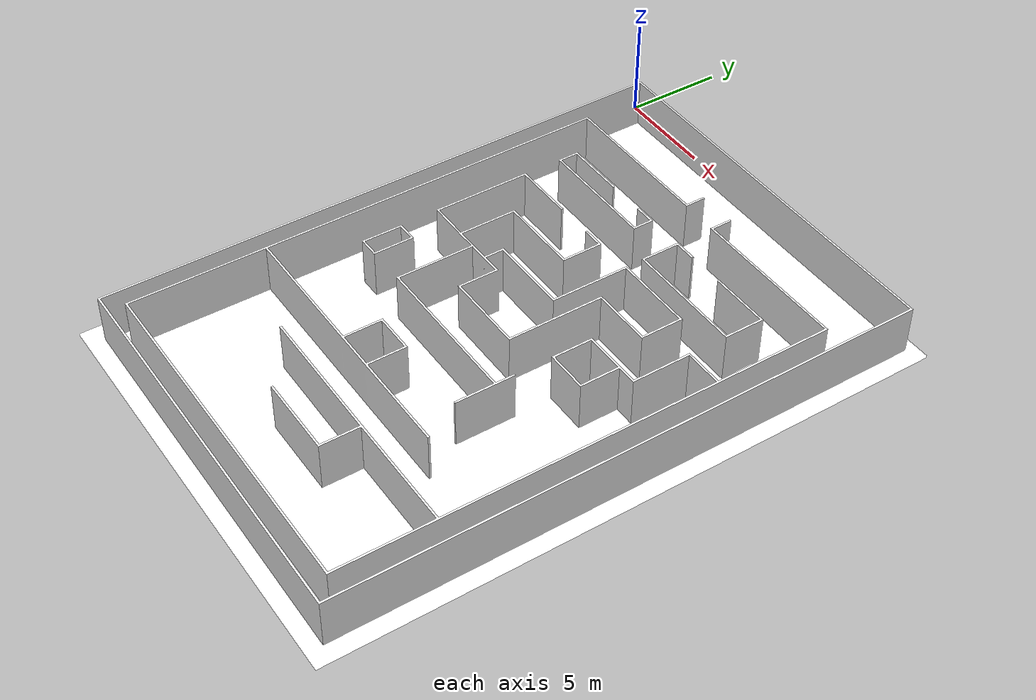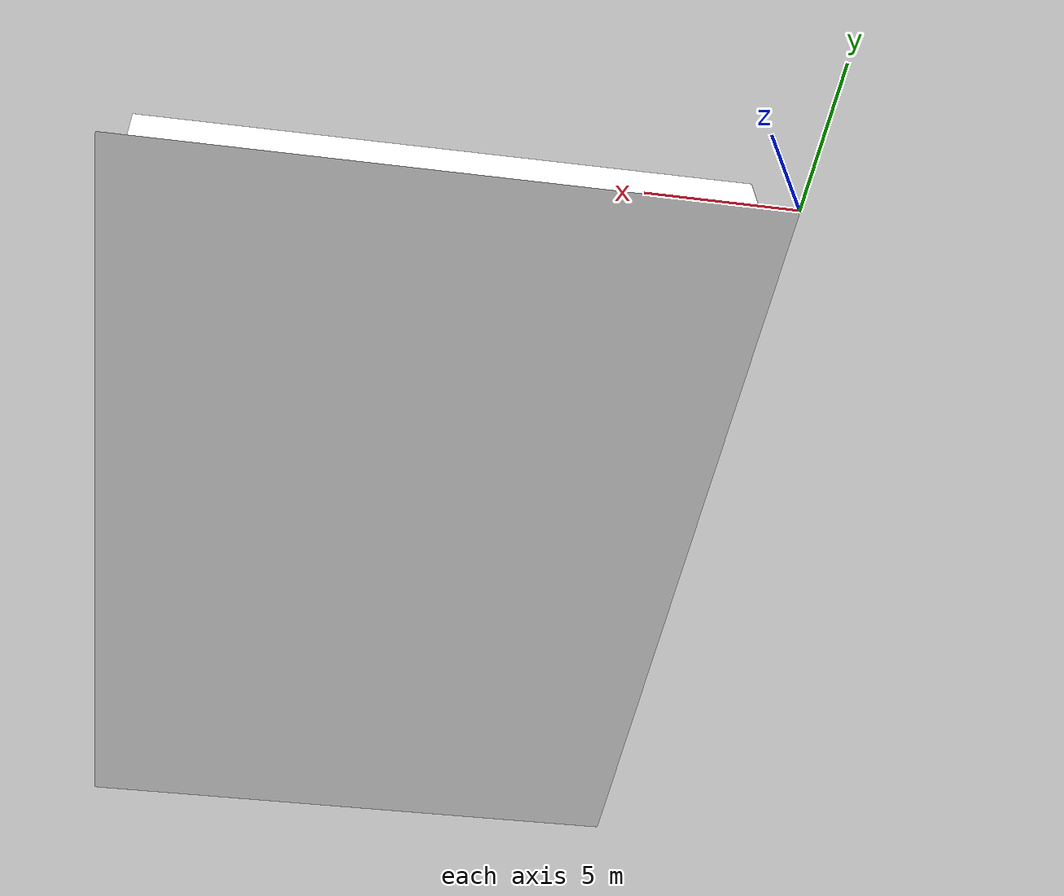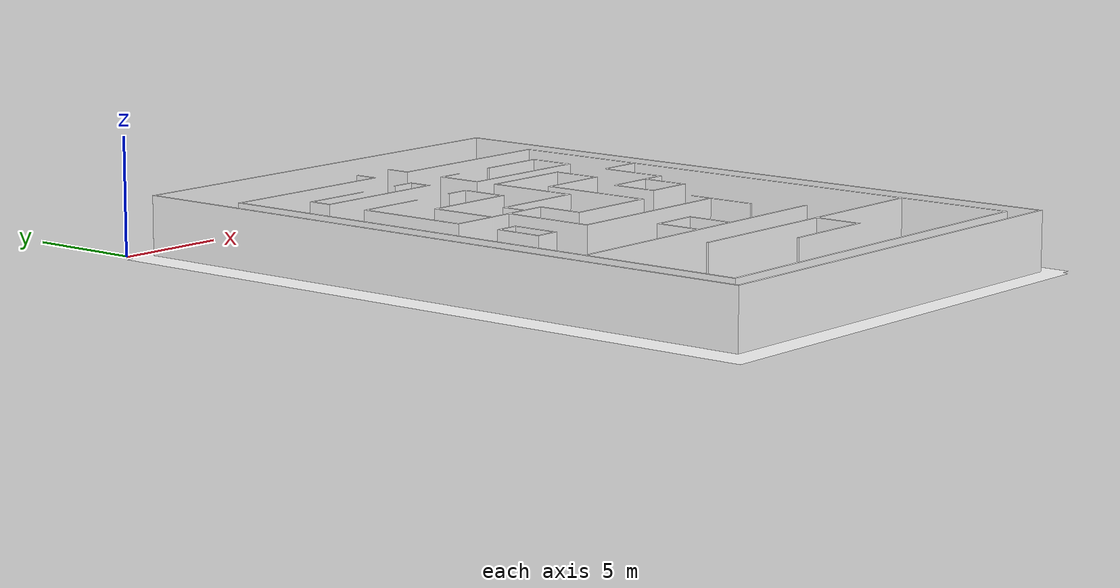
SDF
<?xml version='1.0' encoding='utf-8'?>
<sdf version="1.7">
  <model name="multi_floor_college_floor_0">
    <static>true</static>
    <link name="floor_1">
      <visual name="visual">
        <geometry>
          <mesh>
            <uri>model://multi_floor_college_floor_0/meshes/floor_1.obj</uri>
          </mesh>
        </geometry>
        <material>
          <diffuse>1.0 1.0 1.0</diffuse>
          <specular>0.1 0.1 0.1</specular>
          <pbr>
            <metal>
              <metalness>0.0</metalness>
              <albedo_map>model://multi_floor_college_floor_0/meshes/beige_tiles.png</albedo_map>
            </metal>
          </pbr>
          <script>
            <uri>model://multi_floor_college_floor_0/meshes/</uri>
            <name>floor_1_Diffuse</name>
          </script>
        </material>
      </visual>
      <collision name="collision">
        <geometry>
          <mesh>
            <uri>model://multi_floor_college_floor_0/meshes/floor_1.obj</uri>
          </mesh>
        </geometry>
        <surface>
          <contact>
            <collide_bitmask>0x01</collide_bitmask>
          </contact>
        </surface>
      </collision>
    </link>
    <link name="wall_1">
      <visual name="wall_1">
        <geometry>
          <mesh>
            <uri>model://multi_floor_college_floor_0/meshes/wall_1.obj</uri>
          </mesh>
        </geometry>
        <transparency>0.0</transparency>
        <material>
          <diffuse>1.0 1.0 1.0</diffuse>
          <specular>0.1 0.1 0.1</specular>
          <pbr>
            <metal>
              <metalness>0.0</metalness>
              <albedo_map>model://multi_floor_college_floor_0/meshes/default.png</albedo_map>
            </metal>
          </pbr>
          <script>
            <uri>model://multi_floor_college_floor_0/meshes/</uri>
            <name>wall_1_Diffuse</name>
          </script>
        </material>
      </visual>
      <collision name="collision">
        <geometry>
          <mesh>
            <uri>model://multi_floor_college_floor_0/meshes/wall_1.obj</uri>
          </mesh>
        </geometry>
        <surface>
          <contact>
            <collide_bitmask>0x01</collide_bitmask>
          </contact>
        </surface>
      </collision>
      <pose>0.982365445278063 -30.396634398033505 0 0 0 0</pose>
    </link>
  </model>
</sdf>
